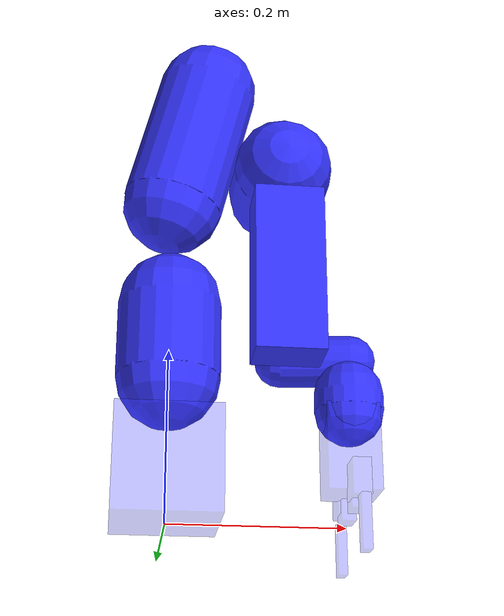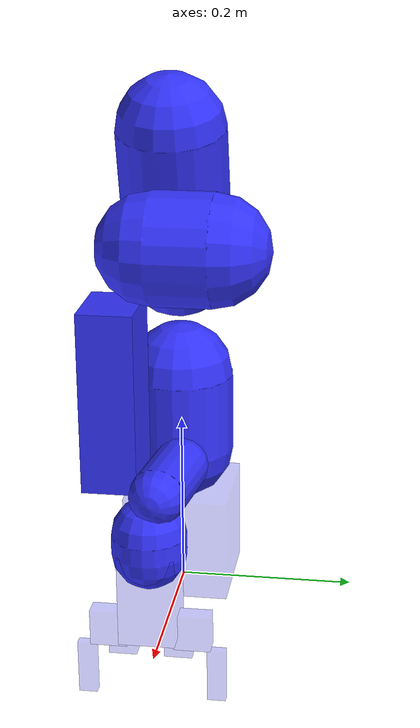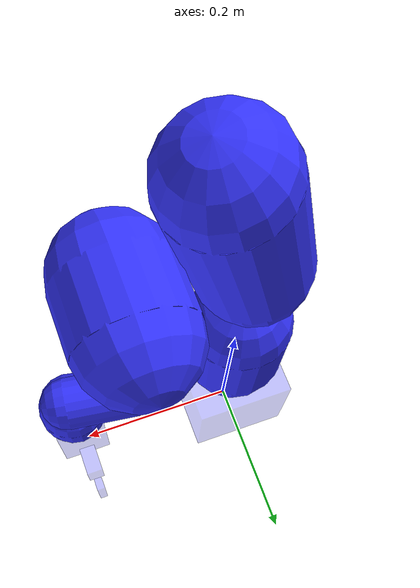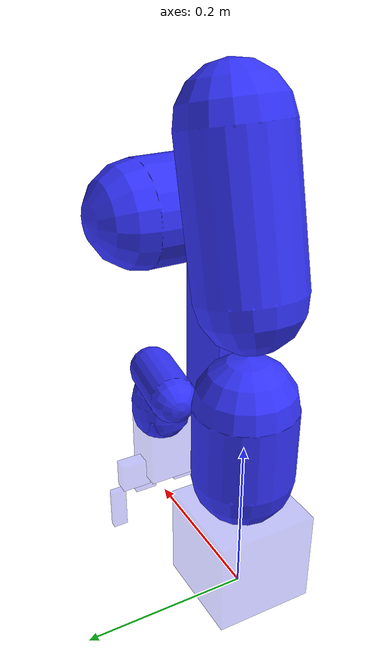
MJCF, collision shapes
<mujoco model="xarm6_gripper">
  <compiler angle="radian" autolimits="true" meshdir="assets"/>

  <option timestep="0.002" iterations="50" tolerance="1e-10" gravity="0.0 0.0 -9.81">
  </option>

  <asset>
    <material name="Black" rgba="0.0 0.0 0.0 1.0"/>
    <material name="gray" rgba="0.753 0.753 0.753 1"/>
    <material name="Red" rgba="0.85 0.19  0.21 1.0"/>
    <material name="Blue" rgba="0.28 0.52 0.92 1.0"/>
    <material name="Green" rgba="0.23 0.72 0.32 1.0"/>
    <material name="Yellow" rgba="0.95 0.76 0.05 1.0"/>
    <material name="White" rgba="1.0 1.0 1.0 1.0"/>
    <material name="Silver" rgba="0.753 0.753 0.753 1.0"/>

    <!-- Arm meshes -->
    <mesh file="base_link.STL"/>
    <mesh file="base.stl"/>
    <mesh file="link1.stl"/>
    <mesh file="link2.stl"/>
    <mesh file="link3.stl"/>
    <mesh file="link4.stl"/>
    <mesh file="link5.stl"/>
    <mesh file="link6.stl"/>

    <!-- Gripper meshes (relative to meshdir, need to go up one level) -->
    <mesh name="gripper_base_mesh" file="../xarm_gripper/meshes/base_link.STL" scale="1 1 1"/>
    <mesh name="left_outer_knuckle_mesh" file="../xarm_gripper/meshes/left_outer_knuckle.STL" scale="1 1 1"/>
    <mesh name="left_finger_mesh" file="../xarm_gripper/meshes/left_finger.STL" scale="1 1 1"/>
    <mesh name="left_inner_knuckle_mesh" file="../xarm_gripper/meshes/left_inner_knuckle.STL" scale="1 1 1"/>
    <mesh name="right_outer_knuckle_mesh" file="../xarm_gripper/meshes/right_outer_knuckle.STL" scale="1 1 1"/>
    <mesh name="right_finger_mesh" file="../xarm_gripper/meshes/right_finger.STL" scale="1 1 1"/>
    <mesh name="right_inner_knuckle_mesh" file="../xarm_gripper/meshes/right_inner_knuckle.STL" scale="1 1 1"/>
  </asset>

  <default>
    <default class="xarm6">
      <geom type="mesh" material="White"/>
      <joint axis="0 0 1" armature="0.1" range="-6.28319 6.28319" frictionloss="1"/>
      <general biastype="affine" ctrlrange="-6.28319 6.28319"/>
      <default class="size1">
        <joint damping="10"/>
        <general gainprm="1500" biasprm="0 -1500 -150" forcerange="-50 50"/>
      </default>
      <default class="size2">
        <joint damping="5"/>
        <general gainprm="1000" biasprm="0 -1000 -100" forcerange="-32 32"/>
      </default>
      <default class="size3">
        <joint damping="2"/>
        <general gainprm="800" biasprm="0 -800 -80" forcerange="-20 20"/>
      </default>
      <default class="visual">
        <geom type="mesh" contype="0" conaffinity="0" rgba="0.7 0.7 0.7 1" group="0"/>
      </default>
      <default class="collision">
        <geom contype="1" conaffinity="1" friction="1 0.005 0.0001" density="2000" group="3" rgba="0.2 0.2 1 0.3"/>
      </default>
    </default>
    <site size="0.001" rgba="1 0 0 1" group="4"/>
  </default>

  <worldbody>
    <body name="link_base" pos="0 0 0.0005584923398936209" quat="1 0 0 0">
      <geom class="visual" mesh="base"/>
      <geom class="collision" type="box" pos="0 0 0.06" size="0.06 0.06 0.06" contype="0" conaffinity="0"/>

      <body name="link1" pos="0 0 0.267">
        <inertial pos="-0.002 0.02692 -0.01332"
                  quat="0.983139 0.180751 -0.00455228 0.0272976"
                  mass="2.16"
                  diaginertia="0.00539487 0.00519906 0.00281397" />
        <joint name="joint1" class="size1"/>
        <geom class="visual" mesh="link1"/>
        <geom class="collision" type="capsule" fromto="0 0 -0.10  0 0 -0.01"  size="0.06"/>

        <body name="link2" quat="0.707105 -0.707108 0 0">
          <inertial pos="0.03531 -0.21398 0.03386"
                    quat="0.361402 0.186059 -0.606177 0.683608"
                    mass="1.71"
                    diaginertia="0.0274285 0.0243228 0.0031487" />
          <joint name="joint2" class="size1" range="-2.059 2.0944"/>
          <geom class="visual" mesh="link2"/>
          <geom class="collision" type="capsule" fromto="0.04 -0.28 0 0 -0.12 0" size="0.06"/>

          <body name="link3" pos="0.0535 -0.2845 0">
            <inertial pos="0.06781 0.10749 0.01457"
                      quat="0.263428 0.373979 -0.79161 0.405092"
                      mass="1.384"
                      diaginertia="0.0066317 0.00482342 0.00214488" />
            <joint name="joint3" class="size2" range="-3.927 0.19198"/>
            <geom class="visual" mesh="link3"/>
            <geom class="collision" type="capsule" fromto="0.08 0.11 0.06    0.08 0.11 -0.005" size="0.06"/>

            <body name="link4" pos="0.0775 0.3425 0" quat="0.707105 -0.707108 0 0">
              <inertial pos="-0.00021 0.02578 -0.02538"
                        quat="0.994019 0.0752563 -0.00686804 0.0788347"
                        mass="1.115"
                        diaginertia="0.00440091 0.00406855 0.00103407" />
              <joint name="joint4" class="size2"/>
              <geom class="visual" mesh="link4"/>
              <geom class="collision" type="box" pos="0 0.05 -0.07" size="0.04 0.03 0.1"/>

              <body name="link5" quat="0.707105 0.707108 0 0">
                <inertial pos="0.05428 0.01781 0.00543"
                          quat="-0.0766302 0.578118 -0.269638 0.766291"
                          mass="1.375"
                          diaginertia="0.00289757 0.0023276 0.000951789" />
                <joint name="joint5" class="size2" range="-1.69297 3.14159"/>
                <geom class="visual" mesh="link5"/>
                <geom class="collision" type="capsule" fromto="0 0.01 0.021 0.08 0.01 0.01" size="0.03"/>

                <body name="link6" pos="0.076 0.097 0" quat="0.707105 -0.707108 0 0">
                  <inertial pos="0 0.00064 -0.00952"
                            quat="0 0.707107 0 0.707107"
                            mass="0.1096"
                            diaginertia="7.9715e-05 4.8111e-05 4.5293e-05" />
                  <joint name="joint6" class="size3" range="-6.28318530718 6.28318530718"/>
                  <geom class="visual" mesh="link6"/>
                  <geom class="collision" type="capsule" fromto="0 0 -0.042 0 0 -0.022" size="0.04"/>

                  <!-- Gripper base (fixed to link6) -->
                  <body name="xarm_gripper_base_link" pos="0 0 0" quat="1 0 0 0">
                    <inertial pos="-0.00065489 -0.0018497 0.048028"
                              quat="1 0 0 0"
                              mass="0.54156"
                              diaginertia="0.00047106 0.00033072 0.00025642"/>
                    <geom type="mesh" mesh="gripper_base_mesh" material="White" contype="0" conaffinity="0" group="0"/>
                    <geom class="collision" type="box" pos="0 0 0.025" size="0.03 0.03 0.05" contype="0" conaffinity="0"/>

                    <!-- Left outer knuckle (driven by drive_joint) -->
                    <body name="left_outer_knuckle" pos="0 0.035 0.059098">
                      <inertial pos="2.9948E-14 0.021559 0.015181"
                                quat="1 0 0 0"
                                mass="0.033618"
                                diaginertia="1.9111E-05 6.6256E-06 1.3185E-05"/>
                      <joint name="drive_joint" type="hinge" axis="1 0 0" range="0 0.85" damping="1" frictionloss="0.0"/>
                      <geom type="mesh" mesh="left_outer_knuckle_mesh" material="Silver" contype="0" conaffinity="0" group="0"/>
                      <geom class="collision" type="box" pos="0 0.01 0.01" size="0.01 0.02 0.02" contype="0" conaffinity="0"/>

                      <!-- Left finger (mimics drive_joint) -->
                      <body name="left_finger" pos="0 0.035465 0.042039">
                        <inertial pos="-2.4536E-14 -0.016413 0.029258"
                                  quat="1 0 0 0"
                                  mass="0.048304"
                                  diaginertia="1.7493E-05 1.7225E-05 5.1466E-06"/>
                        <joint name="left_finger_joint" type="hinge" axis="-1 0 0" range="0 0.85" damping="1" frictionloss="0.0"/>
                        <geom type="mesh" mesh="left_finger_mesh" material="Silver" contype="0" conaffinity="0" group="0"/>
                        <geom class="collision" type="box" pos="0 0 0.02" size="0.005 0.01 0.03" contype="0" conaffinity="0"/>
                      </body>
                    </body>

                    <!-- Left inner knuckle (mimics drive_joint) -->
                    <body name="left_inner_knuckle" pos="0 0.02 0.074098">
                      <inertial pos="1.86600784687907E-06 0.0220467847633621 0.0261334672830885"
                                quat="1 0 0 0"
                                mass="0.0230125781256706"
                                diaginertia="6.09490024271906E-06 6.01955084375188E-06 5.07862004479903E-06"/>
                      <joint name="left_inner_knuckle_joint" type="hinge" axis="1 0 0" range="0 0.85" damping="1" frictionloss="0.0"/>
                      <geom type="mesh" mesh="left_inner_knuckle_mesh" material="Silver" contype="0" conaffinity="0" group="0"/>
                      <geom class="collision" type="box" pos="0 0.01 0.01" size="0.008 0.015 0.015" contype="0" conaffinity="0"/>
                    </body>

                    <!-- Right outer knuckle (mimics drive_joint, opposite direction) -->
                    <body name="right_outer_knuckle" pos="0 -0.035 0.059098">
                      <inertial pos="-3.1669E-14 -0.021559 0.015181"
                                quat="1 0 0 0"
                                mass="0.033618"
                                diaginertia="1.9111E-05 6.6256E-06 1.3185E-05"/>
                      <joint name="right_outer_knuckle_joint" type="hinge" axis="-1 0 0" range="0 0.85" damping="1" frictionloss="0.0"/>
                      <geom type="mesh" mesh="right_outer_knuckle_mesh" material="Silver" contype="0" conaffinity="0" group="0"/>
                      <geom class="collision" type="box" pos="0 -0.01 0.01" size="0.01 0.02 0.02" contype="0" conaffinity="0"/>

                      <!-- Right finger (mimics drive_joint) -->
                      <body name="right_finger" pos="0 -0.035465 0.042039">
                        <inertial pos="2.5618E-14 0.016413 0.029258"
                                  quat="1 0 0 0"
                                  mass="0.048304"
                                  diaginertia="1.7493E-05 1.7225E-05 5.1466E-06"/>
                        <joint name="right_finger_joint" type="hinge" axis="1 0 0" range="0 0.85" damping="1" frictionloss="0.0"/>
                        <geom type="mesh" mesh="right_finger_mesh" material="Silver" contype="0" conaffinity="0" group="0"/>
                        <geom class="collision" type="box" pos="0 0 0.02" size="0.005 0.01 0.03" contype="0" conaffinity="0"/>
                      </body>
                    </body>

                    <!-- Right inner knuckle (mimics drive_joint, opposite direction) -->
                    <body name="right_inner_knuckle" pos="0 -0.02 0.074098">
                      <inertial pos="1.866E-06 -0.022047 0.026133"
                                quat="1 0 0 0"
                                mass="0.023013"
                                diaginertia="6.0949E-06 6.0197E-06 5.0784E-06"/>
                      <joint name="right_inner_knuckle_joint" type="hinge" axis="-1 0 0" range="0 0.85" damping="1" frictionloss="0.0"/>
                      <geom type="mesh" mesh="right_inner_knuckle_mesh" material="Silver" contype="0" conaffinity="0" group="0"/>
                      <geom class="collision" type="box" pos="0 -0.01 0.01" size="0.008 0.015 0.015" contype="0" conaffinity="0"/>
                    </body>
                  </body>
                </body>
              </body>
            </body>
          </body>
        </body>
      </body>
    </body>
  </worldbody>

  <!-- Equality constraints to implement mimic behavior: all joints follow drive_joint -->
  <equality>
    <joint joint1="drive_joint" joint2="left_finger_joint"         polycoef="0 1 0 0 0" solref="0.002 1" solimp="0.98 0.99 0.001"/>
    <joint joint1="drive_joint" joint2="left_inner_knuckle_joint"  polycoef="0 1 0 0 0" solref="0.002 1" solimp="0.98 0.99 0.001"/>
    <joint joint1="drive_joint" joint2="right_outer_knuckle_joint" polycoef="0 1 0 0 0" solref="0.002 1" solimp="0.98 0.99 0.001"/>
    <joint joint1="drive_joint" joint2="right_finger_joint"        polycoef="0 1 0 0 0" solref="0.002 1" solimp="0.98 0.99 0.001"/>
    <joint joint1="drive_joint" joint2="right_inner_knuckle_joint" polycoef="0 1 0 0 0" solref="0.002 1" solimp="0.98 0.99 0.001"/>
  </equality>
  <!-- Position Motor Actuators -->
  <actuator>
    <position name="act1" joint="joint1" class="size1"  group="1" kp="350"/>
    <position name="act2" joint="joint2" class="size1" ctrlrange="-2.059 2.0944" group="1" kp="350"/>
    <position name="act3" joint="joint3" class="size2" ctrlrange="-3.927 0.19198" group="1" kp="350"/>
    <position name="act4" joint="joint4" class="size2" group="1" kp="350"/>
    <position name="act5" joint="joint5" class="size2" ctrlrange="-1.69297 3.14159" group="1" kp="350"/>
    <position name="act6" joint="joint6" class="size3" group="1" kp="350"/>
    <!-- Gripper drive joint actuator (only need to control this one, others follow via equality) -->
    <position name="act_gripper" joint="drive_joint" ctrlrange="0 0.85" kp="200" forcelimited="true" forcerange="-50 50"/>
  </actuator>

  <keyframe>
    <key qpos="0.0 -0.78 -0.78 0.0 1.5708 0.0  0.85 0.85 0.85 0.85 0.85 0.85"/>
  </keyframe>

</mujoco>
